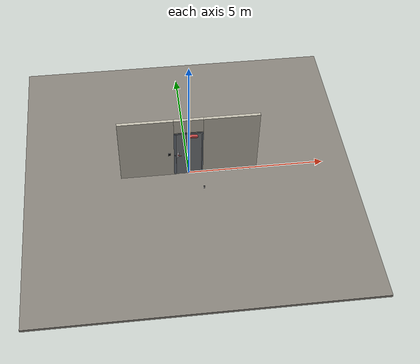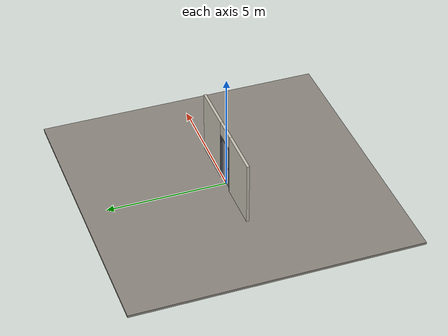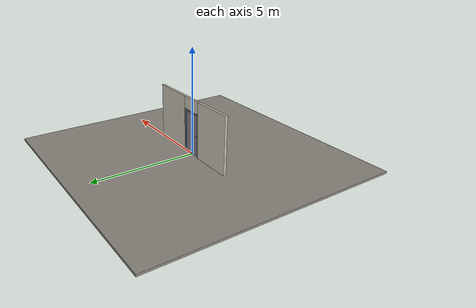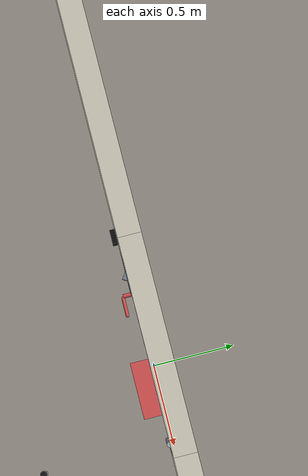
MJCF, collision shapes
<?xml version="1.0" ?>
<mujoco model="db0957_swing_single_simple">
  <compiler angle="radian" meshdir="../../hardware" texturedir="../../textures" autolimits="true" inertiafromgeom="false"/>
  <option timestep="0.002" integrator="implicitfast" cone="elliptic" impratio="10" noslip_iterations="3">
    <flag multiccd="enable"/>
  </option>
  <size memory="16M"/>
  <default>
    <geom condim="4" solref="0.005 1" solimp="0.95 0.99 0.001"/>
    <joint solreflimit="0.005 1" solimplimit="0.95 0.99 0.001"/>
    <tendon solreflimit="0.005 1"/>
    <equality solref="0.002 1"/>
  </default>
  <visual>
    <headlight ambient="0.4 0.4 0.4" diffuse="0.7 0.7 0.7" specular="0.2 0.2 0.2"/>
    <quality shadowsize="4096"/>
    <map znear="0.01" zfar="60"/>
  </visual>
  <asset>
    <mesh name="card_reader_38c0bdb077" file="card_reader_38c0bdb077.obj"/>
    <mesh name="closer_body_fdc4667657" file="closer_body_fdc4667657.obj"/>
    <mesh name="lever_56c65af20a" file="lever_56c65af20a.obj"/>
    <material name="mat_floor" rgba="0.55 0.53 0.5 1" specular="0.2" shininess="0.15" reflectance="0"/>
    <material name="mat_wall" rgba="0.78 0.76 0.7 1" specular="0.2" shininess="0.1" reflectance="0"/>
    <material name="mat_leaf" rgba="0.5 0.51 0.53 1" specular="0.2" shininess="0.33" reflectance="0"/>
    <material name="mat_hinge" rgba="0.65 0.66 0.68 1" specular="0.74" shininess="0.5" reflectance="0.36"/>
    <material name="mat_op_chrome" rgba="0.9 0.9 0.92 1" specular="0.8" shininess="0.9" reflectance="0.4"/>
    <material name="mat_trim" rgba="0.85 0.66 0.3 1" specular="0.8" shininess="0.75" reflectance="0.4"/>
    <material name="mat_reader" rgba="0.05 0.05 0.05 1" specular="0.38" shininess="0.3" reflectance="0.12"/>
    <material name="mat_bolt" rgba="0.75 0.76 0.77 1" specular="0.8" shininess="0.65" reflectance="0.4"/>
    <material name="mat_frame" rgba="0.45 0.48 0.52 1" specular="0.32" shininess="0.6" reflectance="0.08"/>
    <material name="mat_closer" rgba="0.22 0.17 0.13 1" specular="0.8" shininess="0.6" reflectance="0.4"/>
    <material name="mat_wallreader" rgba="0.05 0.05 0.05 1" specular="0.38" shininess="0.3" reflectance="0.12"/>
    <material name="mat_bumper_stop" rgba="0.08 0.08 0.08 1" specular="0.2" shininess="0.1" reflectance="0"/>
    <material name="mat_stop_base" rgba="0.9 0.9 0.92 1" specular="0.8" shininess="0.9" reflectance="0.4"/>
    <texture name="skybox" type="skybox" builtin="gradient" rgb1="0.6 0.7 0.85" rgb2="0.9 0.92 0.95" width="256" height="256"/>
  </asset>
  <worldbody>
    <light name="sun" pos="1.5 -2.5 4" dir="-0.3 0.5 -0.8" directional="true" diffuse="0.8 0.8 0.8" specular="0.3 0.3 0.3" castshadow="true"/>
    <light name="fill" pos="-1.5 2.5 3" dir="0.3 -0.5 -0.7" directional="true" diffuse="0.35 0.35 0.4" castshadow="false"/>
    <camera name="robot_view" pos="0 -2.513687 1.734312" xyaxes="1 0 0 0 0.26963 0.962964" fovy="52"/>
    <camera name="far_view" pos="0 2.570688 1.734312" xyaxes="-1 0 0 0 -0.26963 0.962964" fovy="52"/>
    <camera name="iso" pos="-1.932062 -2.106937 2.141063" xyaxes="0.741536 -0.670913 0 0.242917 0.268487 0.932151" fovy="46"/>
    <camera name="detail_handle" pos="-0.1105 -0.877 1.296" xyaxes="0.97561 0.219512 0 -0.070934 0.315262 0.94635" fovy="38"/>
    <geom name="floor" type="box" size="6 6 0.05" pos="0 0 -0.05" material="mat_floor" group="0" contype="1" conaffinity="1" friction="0.8 0.005 0.0001" density="2400"/>
    <geom name="wall_left" type="box" size="0.97975 0.0575 1.35" pos="-1.52025 0.0285 1.35" material="mat_wall" group="0" contype="1" conaffinity="1" friction="0.6 0.005 0.0001" density="800"/>
    <geom name="wall_right" type="box" size="0.99475 0.0575 1.35" pos="1.50525 0.0285 1.35" material="mat_wall" group="0" contype="1" conaffinity="1" friction="0.6 0.005 0.0001" density="800"/>
    <geom name="wall_header" type="box" size="0.5255 0.0575 0.2875" pos="-0.015 0.0285 2.4125" material="mat_wall" group="0" contype="1" conaffinity="1" friction="0.6 0.005 0.0001" density="800"/>
    <geom name="jamb_hinge" type="box" size="0.025 0.0575 1.0225" pos="0.4855 0.0285 1.0225" material="mat_frame" group="0" contype="1" conaffinity="1" friction="0.6 0.005 0.0001" density="300"/>
    <geom name="strike_1016_wall_n" type="box" size="0.04 0.03825 0.018" pos="-0.5005 0.04775 1.016" material="mat_frame" group="0" contype="1" conaffinity="1" friction="0.6 0.005 0.0001" density="300"/>
    <geom name="strike_1016_wall_p" type="box" size="0.04 0.008 0.018" pos="-0.5005 -0.0175 1.016" material="mat_frame" group="0" contype="1" conaffinity="1" friction="0.6 0.005 0.0001" density="300"/>
    <geom name="strike_1016_ramp" type="box" size="0.04 0.018028 0.018" pos="-0.503782 -0.018312 1.016" quat="0.957092 0 0 -0.289784" material="mat_frame" group="0" contype="1" conaffinity="1" friction="0.12 0.005 0.0001" density="300"/>
    <geom name="strike_1016_back" type="box" size="0.0285 0.0095 0.018" pos="-0.512 0 1.016" material="mat_frame" group="0" contype="1" conaffinity="1" friction="0.6 0.005 0.0001" density="300"/>
    <geom name="jamb_strike_0" type="box" size="0.04 0.0575 0.499" pos="-0.5005 0.0285 0.499" material="mat_frame" group="0" contype="1" conaffinity="1" friction="0.6 0.005 0.0001" density="300"/>
    <geom name="jamb_strike_1" type="box" size="0.04 0.0575 0.5055" pos="-0.5005 0.0285 1.5395" material="mat_frame" group="0" contype="1" conaffinity="1" friction="0.6 0.005 0.0001" density="300"/>
    <geom name="jamb_head" type="box" size="0.5255 0.0575 0.025" pos="-0.015 0.0285 2.07" material="mat_frame" group="0" contype="1" conaffinity="1" friction="0.6 0.005 0.0001" density="300"/>
    <geom name="head_stud" type="box" size="0.5255 0.0575 0.015" pos="-0.015 0.0285 2.11" material="mat_wall" group="0" contype="1" conaffinity="1" friction="0.6 0.005 0.0001" density="500"/>
    <geom name="stop_hinge" type="box" size="0.0055 0.016 1.0225" pos="0.455 0.0385 1.0225" material="mat_frame" group="0" contype="1" conaffinity="1" friction="0.6 0.005 0.0001" density="300"/>
    <geom name="stop_strike" type="box" size="0.0055 0.016 1.0225" pos="-0.455 0.0385 1.0225" material="mat_frame" group="0" contype="1" conaffinity="1" friction="0.6 0.005 0.0001" density="300"/>
    <geom name="stop_head" type="box" size="0.4605 0.016 0.0055" pos="0 0.0385 2.0395" material="mat_frame" group="0" contype="1" conaffinity="1" friction="0.6 0.005 0.0001" density="300"/>
    <geom name="wall_reader" type="box" size="0.04 0.015 0.06" pos="-0.7105 -0.044 1.1" material="mat_wallreader" group="0" contype="1" conaffinity="1" friction="0.6 0.005 0.0001" density="1000"/>
    <geom name="door_stop_base" type="cylinder" size="0.022 0.003" pos="0.4735 -0.8059 0.003" material="mat_stop_base" group="0" contype="1" conaffinity="1" friction="0.6 0.005 0.0001" density="7850"/>
    <geom name="door_stop_post" type="cylinder" size="0.012 0.0245" pos="0.4735 -0.8059 0.0305" material="mat_stop_base" group="0" contype="1" conaffinity="1" friction="0.6 0.005 0.0001" density="7850"/>
    <geom name="door_stop_bumper" type="cylinder" size="0.022 0.02" pos="0.4735 -0.8059 0.075" material="mat_bumper_stop" group="0" contype="1" conaffinity="1" friction="0.6 0.005 0.0001" density="1100"/>
    <site name="approach_point" pos="0 -1.5 0" quat="1 0 0 0" size="0.05" rgba="0.2 0.9 0.2 0.5" group="4"/>
    <site name="goal_point" pos="0 1.5 0" quat="1 0 0 0" size="0.05" rgba="0.2 0.9 0.2 0.5" group="4"/>
    <site name="door_plane_center" pos="0 0 1.0225" quat="1 0 0 0" size="0.02" rgba="0.2 0.9 0.2 0.5" group="4"/>
    <body name="leaf" pos="0.4605 0 0">
      <inertial pos="-0.413989 -0.016132 1.213641" mass="62.250425" quat="0.51572 -0.514083 -0.472665 -0.496326" diaginertia="4.168748195 25.492239767 29.558693229"/>
      <joint name="leaf_hinge" type="hinge" axis="0 0 1" pos="-0.003 -0.029 0" limited="true" range="0 1.570796" damping="12.25611" frictionloss="1.596547" stiffness="12.694198" springref="-2.580707" armature="0.02"/>
      <geom name="leaf_slab" type="box" size="0.457 0.022 1.016" pos="-0.46 0 1.025" material="mat_leaf" group="0" contype="1" conaffinity="1" friction="0.4 0.005 0.0001" density="1"/>
      <geom name="hinge_continuous" type="cylinder" size="0.0136 1.006" pos="-0.003 -0.029 1.025" material="mat_hinge" group="1" contype="0" conaffinity="0" density="2700"/>
      <geom name="leaf_handle_escutcheon_n" type="box" size="0.0375 0.0015 0.13" pos="-0.847 -0.0235 1.016" material="mat_op_chrome" group="1" contype="0" conaffinity="0" density="3000"/>
      <geom name="leaf_handle_escutcheon_p" type="box" size="0.0375 0.0015 0.13" pos="-0.847 0.0235 1.016" material="mat_op_chrome" group="1" contype="0" conaffinity="0" density="3000"/>
      <geom name="leaf_handle_reader" type="mesh" mesh="card_reader_38c0bdb077" pos="-0.847 -0.022 1.176" quat="0.707107 0.707107 0 0" material="mat_reader" group="1" contype="0" conaffinity="0" density="2000"/>
      <geom name="leaf_latch_bolt_faceplate" type="box" size="0.0006 0.014 0.028" pos="-0.9164 0 1.016" material="mat_bolt" group="1" contype="0" conaffinity="0" density="8500"/>
      <geom name="closer_body" type="mesh" mesh="closer_body_fdc4667657" pos="-0.3 -0.022 1.952" quat="0 0 -0.707107 0.707107" material="mat_closer" group="1" contype="0" conaffinity="0" density="2000"/>
      <geom name="closer_body_col" type="box" size="0.145 0.05 0.035" pos="-0.3 -0.072 1.952" material="mat_closer" group="3" contype="1" conaffinity="1" rgba="0.8 0.3 0.3 0.25" friction="0.6 0.005 0.0001" density="2000"/>
      <site name="leaf_edge_mid" pos="-0.917 0 1.016" quat="1 0 0 0" size="0.02" rgba="0.2 0.9 0.2 0.5" group="4"/>
      <body name="leaf_handle" pos="-0.847 0 1.016">
        <inertial pos="0.038009 0 0" mass="0.678697" quat="0.707107 0 0 -0.707107" diaginertia="0.001178914 0.003248695 0.004390737"/>
        <joint name="leaf_handle_hinge" type="hinge" axis="0 1 0" limited="true" range="0 0.87" damping="0.231314" frictionloss="0.06" stiffness="1.1" springref="-0.454545" armature="0.01"/>
        <geom name="leaf_handle_lever_n" type="mesh" mesh="lever_56c65af20a" pos="0 -0.022 0" quat="0 0 -0.707107 0.707107" material="mat_op_chrome" group="1" contype="0" conaffinity="0" density="3000"/>
        <geom name="leaf_handle_lever_col_n" type="capsule" size="0.0095 0.0505" pos="0.06 -0.077 0" quat="0.707107 0 0.707107 0" material="mat_op_chrome" group="3" contype="1" conaffinity="1" rgba="0.8 0.3 0.3 0.25" friction="0.7 0.01 0.0001" density="3000"/>
        <geom name="leaf_handle_hub_col_n" type="cylinder" size="0.012 0.022" pos="0 -0.052 0" quat="0.707107 -0.707107 0 0" material="mat_op_chrome" group="3" contype="1" conaffinity="1" rgba="0.8 0.3 0.3 0.25" friction="0.6 0.005 0.0001" density="3000"/>
        <geom name="leaf_handle_lever_p" type="mesh" mesh="lever_56c65af20a" pos="0 0.022 0" quat="0 0 0.707107 0.707107" material="mat_op_chrome" group="1" contype="0" conaffinity="0" density="3000"/>
        <geom name="leaf_handle_lever_col_p" type="capsule" size="0.0095 0.0505" pos="0.06 0.077 0" quat="0.707107 0 0.707107 0" material="mat_op_chrome" group="3" contype="1" conaffinity="1" rgba="0.8 0.3 0.3 0.25" friction="0.7 0.01 0.0001" density="3000"/>
        <geom name="leaf_handle_hub_col_p" type="cylinder" size="0.012 0.022" pos="0 0.052 0" quat="0.707107 -0.707107 0 0" material="mat_op_chrome" group="3" contype="1" conaffinity="1" rgba="0.8 0.3 0.3 0.25" friction="0.6 0.005 0.0001" density="3000"/>
        <site name="leaf_handle_grip_n" pos="0.096 -0.077 0" quat="1 0 0 0" size="0.012" rgba="0.2 0.9 0.2 0.5" group="4"/>
        <site name="leaf_handle_grip_p" pos="0.096 0.077 0" quat="1 0 0 0" size="0.012" rgba="0.2 0.9 0.2 0.5" group="4"/>
      </body>
      <body name="leaf_latch_bolt" pos="-0.917 0 1.016">
        <inertial pos="0.0055 0 0" mass="0.074627" quat="0.92388 0.382683 0 0" diaginertia="0.000002271 0.000013255 0.000013255"/>
        <joint name="leaf_latch_bolt_slide" type="slide" axis="1 0 0" limited="true" range="0 0.019" damping="2" frictionloss="0.3" stiffness="550" springref="-0.01" armature="0.1"/>
        <geom name="leaf_latch_bolt_capsule" type="capsule" size="0.008 0.0165" pos="0.0055 0 0" quat="0.707107 0 -0.707107 0" material="mat_bolt" group="0" contype="1" conaffinity="1" friction="0.2 0.005 0.0001" density="8500"/>
      </body>
    </body>
  </worldbody>
  <tendon>
    <fixed name="leaf_latch_bolt_coupling" limited="true" range="0 10">
      <joint joint="leaf_latch_bolt_slide" coef="1"/>
      <joint joint="leaf_handle_hinge" coef="-0.023457"/>
    </fixed>
  </tendon>
  <sensor>
    <jointpos name="leaf_hinge_pos" joint="leaf_hinge"/>
    <jointvel name="leaf_hinge_vel" joint="leaf_hinge"/>
    <jointpos name="leaf_handle_hinge_pos" joint="leaf_handle_hinge"/>
    <jointvel name="leaf_handle_hinge_vel" joint="leaf_handle_hinge"/>
    <jointpos name="leaf_latch_bolt_slide_pos" joint="leaf_latch_bolt_slide"/>
    <jointvel name="leaf_latch_bolt_slide_vel" joint="leaf_latch_bolt_slide"/>
  </sensor>
</mujoco>
